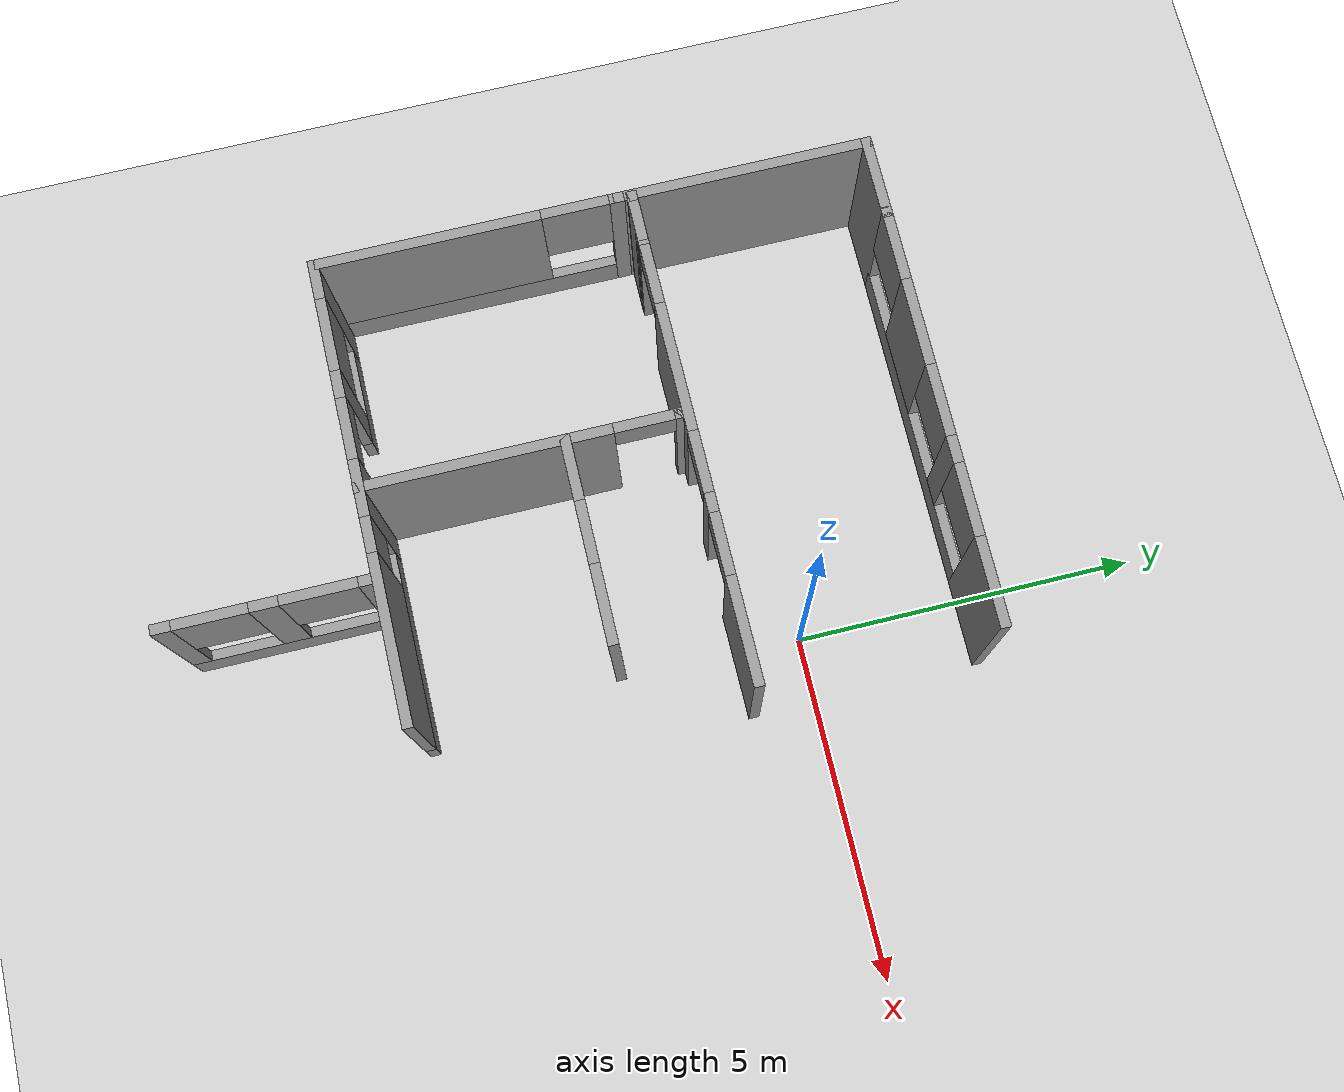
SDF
<sdf version="1.7">
 <world name="default">
  <model name="ground_plane">
   <static>1</static>
   <link name="link">
    <collision name="collision">
     <geometry><plane><normal>0 0 1</normal><size>100 100</size></plane></geometry>
     <surface>
      <contact><collide_bitmask>65535</collide_bitmask></contact>
      <friction><ode><mu>100</mu><mu2>50</mu2></ode></friction>
     </surface>
    </collision>
    <visual name="visual">
     <cast_shadows>0</cast_shadows>
     <geometry><plane><normal>0 0 1</normal><size>100 100</size></plane></geometry>
     <material>
      <script><uri>file://media/materials/scripts/gazebo.material</uri><name>Gazebo/Grey</name></script>
     </material>
    </visual>
   </link>
  </model>
  <model name="Floorplan1">
   <pose>1.2745 -2.98867 0 0 -0 0</pose>
   <link name="Wall_0">
    <collision name="Wall_0_Collision">
     <geometry><box><size>1.25 0.15 2.5</size></box></geometry>
     <pose>0 0 1.25 0 -0 0</pose>
    </collision>
    <visual name="Wall_0_Visual">
     <pose>0 0 1.25 0 -0 0</pose>
     <geometry><box><size>1.25 0.15 2.5</size></box></geometry>
     <material>
      <script><uri>file://media/materials/scripts/gazebo.material</uri><name>Gazebo/Grey</name></script>
      <ambient>1 1 1 1</ambient>
     </material>
     <meta><layer>0</layer></meta>
    </visual>
    <pose>-6.99818 5.45219 0 0 -0 3.14159</pose>
   </link>
   <link name="Wall_1">
    <collision name="Wall_1_Collision">
     <geometry><box><size>3.75 0.15 2.5</size></box></geometry>
     <pose>0 0 1.25 0 -0 0</pose>
    </collision>
    <visual name="Wall_1_Visual">
     <pose>0 0 1.25 0 -0 0</pose>
     <geometry><box><size>3.75 0.15 2.5</size></box></geometry>
     <material>
      <script><uri>file://media/materials/scripts/gazebo.material</uri><name>Gazebo/Grey</name></script>
      <ambient>1 1 1 1</ambient>
     </material>
     <meta><layer>0</layer></meta>
    </visual>
    <pose>-7.54818 3.65219 0 0 -0 -1.5708</pose>
   </link>
   <link name="Wall_10">
    <collision name="Wall_10_Collision">
     <geometry><box><size>0.15 0.15 2.5</size></box></geometry>
     <pose>0 0 1.25 0 -0 0</pose>
    </collision>
    <visual name="Wall_10_Visual">
     <pose>0 0 1.25 0 -0 0</pose>
     <geometry><box><size>0.15 0.15 2.5</size></box></geometry>
     <material>
      <script><uri>file://media/materials/scripts/gazebo.material</uri><name>Gazebo/Grey</name></script>
      <ambient>1 1 1 1</ambient>
     </material>
     <meta><layer>0</layer></meta>
    </visual>
    <pose>-6.44818 5.45219 0 0 -0 0</pose>
   </link>
   <link name="Wall_12">
    <collision name="Wall_12_Collision">
     <geometry><box><size>0.15 0.15 2.5</size></box></geometry>
     <pose>0 0 1.25 0 -0 0</pose>
    </collision>
    <visual name="Wall_12_Visual">
     <pose>0 0 1.25 0 -0 0</pose>
     <geometry><box><size>0.15 0.15 2.5</size></box></geometry>
     <material>
      <script><uri>file://media/materials/scripts/gazebo.material</uri><name>Gazebo/Grey</name></script>
      <ambient>1 1 1 1</ambient>
     </material>
     <meta><layer>0</layer></meta>
    </visual>
    <pose>-7.52398 2.04006 0 0 -0 0</pose>
   </link>
   <link name="Wall_14">
    <collision name="Wall_14_Collision">
     <geometry><box><size>0.15 0.15 2.5</size></box></geometry>
     <pose>0 0 1.25 0 -0 0</pose>
    </collision>
    <visual name="Wall_14_Visual">
     <pose>0 0 1.25 0 -0 0</pose>
     <geometry><box><size>0.15 0.15 2.5</size></box></geometry>
     <material>
      <script><uri>file://media/materials/scripts/gazebo.material</uri><name>Gazebo/Grey</name></script>
      <ambient>1 1 1 1</ambient>
     </material>
     <meta><layer>0</layer></meta>
    </visual>
    <pose>-7.52398 2.04006 0 0 -0 0</pose>
   </link>
   <link name="Wall_16">
    <collision name="Wall_16_Collision">
     <geometry><box><size>0.15 0.15 2.5</size></box></geometry>
     <pose>0 0 1.25 0 -0 0</pose>
    </collision>
    <visual name="Wall_16_Visual">
     <pose>0 0 1.25 0 -0 0</pose>
     <geometry><box><size>0.15 0.15 2.5</size></box></geometry>
     <material>
      <script><uri>file://media/materials/scripts/gazebo.material</uri><name>Gazebo/Grey</name></script>
      <ambient>1 1 1 1</ambient>
     </material>
     <meta><layer>0</layer></meta>
    </visual>
    <pose>-7.52398 2.04006 0 0 -0 0</pose>
   </link>
   <link name="Wall_18">
    <pose>-7.54818 -0.322811 0 0 -0 -1.5708</pose>
    <visual name="Wall_18_Visual_0">
     <pose>-2.14202 0 1.25 0 -0 0</pose>
     <geometry><box><size>0.215958 0.15 2.5</size></box></geometry>
     <material>
      <script><uri>file://media/materials/scripts/gazebo.material</uri><name>Gazebo/Grey</name></script>
      <ambient>1 1 1 1</ambient>
     </material>
     <meta><layer>0</layer></meta>
    </visual>
    <collision name="Wall_18_Collision_0">
     <geometry><box><size>0.215958 0.15 2.5</size></box></geometry>
     <pose>-2.14202 0 1.25 0 -0 0</pose>
    </collision>
    <visual name="Wall_18_Visual_1">
     <pose>0.107979 0 0.25 0 -0 0</pose>
     <geometry><box><size>4.28404 0.15 0.5</size></box></geometry>
     <material>
      <script><uri>file://media/materials/scripts/gazebo.material</uri><name>Gazebo/Grey</name></script>
      <ambient>1 1 1 1</ambient>
     </material>
     <meta><layer>0</layer></meta>
    </visual>
    <collision name="Wall_18_Collision_1">
     <geometry><box><size>4.28404 0.15 0.5</size></box></geometry>
     <pose>0.107979 0 0.25 0 -0 0</pose>
    </collision>
    <visual name="Wall_18_Visual_2">
     <pose>0.597695 0 1.5 0 -0 0</pose>
     <geometry><box><size>3.30461 0.15 2</size></box></geometry>
     <material>
      <script><uri>file://media/materials/scripts/gazebo.material</uri><name>Gazebo/Grey</name></script>
      <ambient>1 1 1 1</ambient>
     </material>
     <meta><layer>0</layer></meta>
    </visual>
    <collision name="Wall_18_Collision_2">
     <geometry><box><size>3.30461 0.15 2</size></box></geometry>
     <pose>0.597695 0 1.5 0 -0 0</pose>
    </collision>
    <visual name="Wall_18_Visual_3">
     <pose>-1.54433 0 1.9 0 -0 0</pose>
     <geometry><box><size>0.979431 0.15 1.2</size></box></geometry>
     <material>
      <script><uri>file://media/materials/scripts/gazebo.material</uri><name>Gazebo/Grey</name></script>
      <ambient>1 1 1 1</ambient>
     </material>
     <meta><layer>0</layer></meta>
    </visual>
    <collision name="Wall_18_Collision_3">
     <geometry><box><size>0.979431 0.15 1.2</size></box></geometry>
     <pose>-1.54433 0 1.9 0 -0 0</pose>
    </collision>
   </link>
   <link name="Wall_19">
    <pose>-4.24818 -2.49781 0 0 -0 0</pose>
    <visual name="Wall_19_Visual_0">
     <pose>-3.08087 0 1.25 0 -0 0</pose>
     <geometry><box><size>0.58825 0.15 2.5</size></box></geometry>
     <material>
      <script><uri>file://media/materials/scripts/gazebo.material</uri><name>Gazebo/Grey</name></script>
      <ambient>1 1 1 1</ambient>
     </material>
     <meta><layer>0</layer></meta>
    </visual>
    <collision name="Wall_19_Collision_0">
     <geometry><box><size>0.58825 0.15 2.5</size></box></geometry>
     <pose>-3.08087 0 1.25 0 -0 0</pose>
    </collision>
    <visual name="Wall_19_Visual_1">
     <pose>0.015384 0 1.25 0 -0 0</pose>
     <geometry><box><size>0.825338 0.15 2.5</size></box></geometry>
     <material>
      <script><uri>file://media/materials/scripts/gazebo.material</uri><name>Gazebo/Grey</name></script>
      <ambient>1 1 1 1</ambient>
     </material>
     <meta><layer>0</layer></meta>
    </visual>
    <collision name="Wall_19_Collision_1">
     <geometry><box><size>0.825338 0.15 2.5</size></box></geometry>
     <pose>0.015384 0 1.25 0 -0 0</pose>
    </collision>
    <visual name="Wall_19_Visual_2">
     <pose>-2.04202 0 0.25 0 -0 0</pose>
     <geometry><box><size>1.48947 0.15 0.5</size></box></geometry>
     <material>
      <script><uri>file://media/materials/scripts/gazebo.material</uri><name>Gazebo/Grey</name></script>
      <ambient>1 1 1 1</ambient>
     </material>
     <meta><layer>0</layer></meta>
    </visual>
    <collision name="Wall_19_Collision_2">
     <geometry><box><size>1.48947 0.15 0.5</size></box></geometry>
     <pose>-2.04202 0 0.25 0 -0 0</pose>
    </collision>
    <visual name="Wall_19_Visual_3">
     <pose>1.90153 0 0.25 0 -0 0</pose>
     <geometry><box><size>2.94695 0.15 0.5</size></box></geometry>
     <material>
      <script><uri>file://media/materials/scripts/gazebo.material</uri><name>Gazebo/Grey</name></script>
      <ambient>1 1 1 1</ambient>
     </material>
     <meta><layer>0</layer></meta>
    </visual>
    <collision name="Wall_19_Collision_3">
     <geometry><box><size>2.94695 0.15 0.5</size></box></geometry>
     <pose>1.90153 0 0.25 0 -0 0</pose>
    </collision>
    <visual name="Wall_19_Visual_4">
     <pose>-1.49997 0 1.5 0 -0 0</pose>
     <geometry><box><size>0.405366 0.15 2</size></box></geometry>
     <material>
      <script><uri>file://media/materials/scripts/gazebo.material</uri><name>Gazebo/Grey</name></script>
      <ambient>1 1 1 1</ambient>
     </material>
     <meta><layer>0</layer></meta>
    </visual>
    <collision name="Wall_19_Collision_4">
     <geometry><box><size>0.405366 0.15 2</size></box></geometry>
     <pose>-1.49997 0 1.5 0 -0 0</pose>
    </collision>
    <visual name="Wall_19_Visual_5">
     <pose>-1.49997 0 1.5 0 -0 0</pose>
     <geometry><box><size>0.405366 0.15 2</size></box></geometry>
     <material>
      <script><uri>file://media/materials/scripts/gazebo.material</uri><name>Gazebo/Grey</name></script>
      <ambient>1 1 1 1</ambient>
     </material>
     <meta><layer>0</layer></meta>
    </visual>
    <collision name="Wall_19_Collision_5">
     <geometry><box><size>0.405366 0.15 2</size></box></geometry>
     <pose>-1.49997 0 1.5 0 -0 0</pose>
    </collision>
    <visual name="Wall_19_Visual_6">
     <pose>2.15948 0 1.5 0 -0 0</pose>
     <geometry><box><size>2.43105 0.15 2</size></box></geometry>
     <material>
      <script><uri>file://media/materials/scripts/gazebo.material</uri><name>Gazebo/Grey</name></script>
      <ambient>1 1 1 1</ambient>
     </material>
     <meta><layer>0</layer></meta>
    </visual>
    <collision name="Wall_19_Collision_6">
     <geometry><box><size>2.43105 0.15 2</size></box></geometry>
     <pose>2.15948 0 1.5 0 -0 0</pose>
    </collision>
    <visual name="Wall_19_Visual_7">
     <pose>-2.2447 0 1.9 0 -0 0</pose>
     <geometry><box><size>1.0841 0.15 1.2</size></box></geometry>
     <material>
      <script><uri>file://media/materials/scripts/gazebo.material</uri><name>Gazebo/Grey</name></script>
      <ambient>1 1 1 1</ambient>
     </material>
     <meta><layer>0</layer></meta>
    </visual>
    <collision name="Wall_19_Collision_7">
     <geometry><box><size>1.0841 0.15 1.2</size></box></geometry>
     <pose>-2.2447 0 1.9 0 -0 0</pose>
    </collision>
    <visual name="Wall_19_Visual_8">
     <pose>0.686003 0 1.9 0 -0 0</pose>
     <geometry><box><size>0.515901 0.15 1.2</size></box></geometry>
     <material>
      <script><uri>file://media/materials/scripts/gazebo.material</uri><name>Gazebo/Grey</name></script>
      <ambient>1 1 1 1</ambient>
     </material>
     <meta><layer>0</layer></meta>
    </visual>
    <collision name="Wall_19_Collision_8">
     <geometry><box><size>0.515901 0.15 1.2</size></box></geometry>
     <pose>0.686003 0 1.9 0 -0 0</pose>
    </collision>
    <visual name="Wall_19_Visual_9">
     <pose>-0.847285 0 2.25 0 -0 0</pose>
     <geometry><box><size>0.9 0.15 0.5</size></box></geometry>
     <material>
      <script><uri>file://media/materials/scripts/gazebo.material</uri><name>Gazebo/Grey</name></script>
      <ambient>1 1 1 1</ambient>
     </material>
     <meta><layer>0</layer></meta>
    </visual>
    <collision name="Wall_19_Collision_9">
     <geometry><box><size>0.9 0.15 0.5</size></box></geometry>
     <pose>-0.847285 0 2.25 0 -0 0</pose>
    </collision>
    <visual name="Wall_19_Visual_10">
     <pose>-0.847285 0 2.25 0 -0 0</pose>
     <geometry><box><size>0.9 0.15 0.5</size></box></geometry>
     <material>
      <script><uri>file://media/materials/scripts/gazebo.material</uri><name>Gazebo/Grey</name></script>
      <ambient>1 1 1 1</ambient>
     </material>
     <meta><layer>0</layer></meta>
    </visual>
    <collision name="Wall_19_Collision_10">
     <geometry><box><size>0.9 0.15 0.5</size></box></geometry>
     <pose>-0.847285 0 2.25 0 -0 0</pose>
    </collision>
   </link>
   <link name="Wall_2">
    <collision name="Wall_2_Collision">
     <geometry><box><size>0.15 0.15 2.5</size></box></geometry>
     <pose>0 0 1.25 0 -0 0</pose>
    </collision>
    <visual name="Wall_2_Visual">
     <pose>0 0 1.25 0 -0 0</pose>
     <geometry><box><size>0.15 0.15 2.5</size></box></geometry>
     <material>
      <script><uri>file://media/materials/scripts/gazebo.material</uri><name>Gazebo/Grey</name></script>
      <ambient>1 1 1 1</ambient>
     </material>
     <meta><layer>0</layer></meta>
    </visual>
    <pose>-7.54818 1.85219 0 0 -0 0</pose>
   </link>
   <link name="Wall_26">
    <pose>-2.81697 0.347251 0 0 -0 3.14159</pose>
    <visual name="Wall_26_Visual_0">
     <pose>-0.92766 0 1.25 0 -0 0</pose>
     <geometry><box><size>1.14468 0.15 2.5</size></box></geometry>
     <material>
      <script><uri>file://media/materials/scripts/gazebo.material</uri><name>Gazebo/Grey</name></script>
      <ambient>1 1 1 1</ambient>
     </material>
     <meta><layer>0</layer></meta>
    </visual>
    <collision name="Wall_26_Collision_0">
     <geometry><box><size>1.14468 0.15 2.5</size></box></geometry>
     <pose>-0.92766 0 1.25 0 -0 0</pose>
    </collision>
    <visual name="Wall_26_Visual_1">
     <pose>1.02234 0 1.25 0 -0 0</pose>
     <geometry><box><size>0.95532 0.15 2.5</size></box></geometry>
     <material>
      <script><uri>file://media/materials/scripts/gazebo.material</uri><name>Gazebo/Grey</name></script>
      <ambient>1 1 1 1</ambient>
     </material>
     <meta><layer>0</layer></meta>
    </visual>
    <collision name="Wall_26_Collision_1">
     <geometry><box><size>0.95532 0.15 2.5</size></box></geometry>
     <pose>1.02234 0 1.25 0 -0 0</pose>
    </collision>
    <visual name="Wall_26_Visual_2">
     <pose>0.09468 0 2.25 0 -0 0</pose>
     <geometry><box><size>0.9 0.15 0.5</size></box></geometry>
     <material>
      <script><uri>file://media/materials/scripts/gazebo.material</uri><name>Gazebo/Grey</name></script>
      <ambient>1 1 1 1</ambient>
     </material>
     <meta><layer>0</layer></meta>
    </visual>
    <collision name="Wall_26_Collision_2">
     <geometry><box><size>0.9 0.15 0.5</size></box></geometry>
     <pose>0.09468 0 2.25 0 -0 0</pose>
    </collision>
   </link>
   <link name="Wall_27">
    <collision name="Wall_27_Collision">
     <geometry><box><size>3 0.15 2.5</size></box></geometry>
     <pose>0 0 1.25 0 -0 0</pose>
    </collision>
    <visual name="Wall_27_Visual">
     <pose>0 0 1.25 0 -0 0</pose>
     <geometry><box><size>3 0.15 2.5</size></box></geometry>
     <material>
      <script><uri>file://media/materials/scripts/gazebo.material</uri><name>Gazebo/Grey</name></script>
      <ambient>1 1 1 1</ambient>
     </material>
     <meta><layer>0</layer></meta>
    </visual>
    <pose>-4.24197 -1.07775 0 0 -0 -1.5708</pose>
   </link>
   <link name="Wall_28">
    <collision name="Wall_28_Collision">
     <geometry><box><size>0.15 0.15 2.5</size></box></geometry>
     <pose>0 0 1.25 0 -0 0</pose>
    </collision>
    <visual name="Wall_28_Visual">
     <pose>0 0 1.25 0 -0 0</pose>
     <geometry><box><size>0.15 0.15 2.5</size></box></geometry>
     <material>
      <script><uri>file://media/materials/scripts/gazebo.material</uri><name>Gazebo/Grey</name></script>
      <ambient>1 1 1 1</ambient>
     </material>
     <meta><layer>0</layer></meta>
    </visual>
    <pose>-4.24197 -2.50275 0 0 -0 0</pose>
   </link>
   <link name="Wall_3">
    <collision name="Wall_3_Collision">
     <geometry><box><size>0.15 0.15 2.5</size></box></geometry>
     <pose>0 0 1.25 0 -0 0</pose>
    </collision>
    <visual name="Wall_3_Visual">
     <pose>0 0 1.25 0 -0 0</pose>
     <geometry><box><size>0.15 0.15 2.5</size></box></geometry>
     <material>
      <script><uri>file://media/materials/scripts/gazebo.material</uri><name>Gazebo/Grey</name></script>
      <ambient>1 1 1 1</ambient>
     </material>
     <meta><layer>0</layer></meta>
    </visual>
    <pose>-7.54818 1.85219 0 0 -0 0</pose>
   </link>
   <link name="Wall_30">
    <pose>-4.24197 1.14725 0 0 -0 1.5708</pose>
    <visual name="Wall_30_Visual_0">
     <pose>-0.503537 0 1.25 0 -0 0</pose>
     <geometry><box><size>0.742926 0.15 2.5</size></box></geometry>
     <material>
      <script><uri>file://media/materials/scripts/gazebo.material</uri><name>Gazebo/Grey</name></script>
      <ambient>1 1 1 1</ambient>
     </material>
     <meta><layer>0</layer></meta>
    </visual>
    <collision name="Wall_30_Collision_0">
     <geometry><box><size>0.742926 0.15 2.5</size></box></geometry>
     <pose>-0.503537 0 1.25 0 -0 0</pose>
    </collision>
    <visual name="Wall_30_Visual_1">
     <pose>0.821463 0 1.25 0 -0 0</pose>
     <geometry><box><size>0.107074 0.15 2.5</size></box></geometry>
     <material>
      <script><uri>file://media/materials/scripts/gazebo.material</uri><name>Gazebo/Grey</name></script>
      <ambient>1 1 1 1</ambient>
     </material>
     <meta><layer>0</layer></meta>
    </visual>
    <collision name="Wall_30_Collision_1">
     <geometry><box><size>0.107074 0.15 2.5</size></box></geometry>
     <pose>0.821463 0 1.25 0 -0 0</pose>
    </collision>
    <visual name="Wall_30_Visual_2">
     <pose>0.317926 0 2.25 0 -0 0</pose>
     <geometry><box><size>0.9 0.15 0.5</size></box></geometry>
     <material>
      <script><uri>file://media/materials/scripts/gazebo.material</uri><name>Gazebo/Grey</name></script>
      <ambient>1 1 1 1</ambient>
     </material>
     <meta><layer>0</layer></meta>
    </visual>
    <collision name="Wall_30_Collision_2">
     <geometry><box><size>0.9 0.15 0.5</size></box></geometry>
     <pose>0.317926 0 2.25 0 -0 0</pose>
    </collision>
   </link>
   <link name="Wall_31">
    <collision name="Wall_31_Collision">
     <geometry><box><size>0.15 0.15 2.5</size></box></geometry>
     <pose>0 0 1.25 0 -0 0</pose>
    </collision>
    <visual name="Wall_31_Visual">
     <pose>0 0 1.25 0 -0 0</pose>
     <geometry><box><size>0.15 0.15 2.5</size></box></geometry>
     <material>
      <script><uri>file://media/materials/scripts/gazebo.material</uri><name>Gazebo/Grey</name></script>
      <ambient>1 1 1 1</ambient>
     </material>
     <meta><layer>0</layer></meta>
    </visual>
    <pose>-4.24197 1.94725 0 0 -0 0</pose>
   </link>
   <link name="Wall_33">
    <pose>-2.95182 -4.05 0 0 -0 -1.5708</pose>
    <visual name="Wall_33_Visual_0">
     <pose>-1.39729 0 1.25 0 -0 0</pose>
     <geometry><box><size>0.205423 0.15 2.5</size></box></geometry>
     <material>
      <script><uri>file://media/materials/scripts/gazebo.material</uri><name>Gazebo/Grey</name></script>
      <ambient>1 1 1 1</ambient>
     </material>
     <meta><layer>0</layer></meta>
    </visual>
    <collision name="Wall_33_Collision_0">
     <geometry><box><size>0.205423 0.15 2.5</size></box></geometry>
     <pose>-1.39729 0 1.25 0 -0 0</pose>
    </collision>
    <visual name="Wall_33_Visual_1">
     <pose>0.102712 0 0.25 0 -0 0</pose>
     <geometry><box><size>2.79458 0.15 0.5</size></box></geometry>
     <material>
      <script><uri>file://media/materials/scripts/gazebo.material</uri><name>Gazebo/Grey</name></script>
      <ambient>1 1 1 1</ambient>
     </material>
     <meta><layer>0</layer></meta>
    </visual>
    <collision name="Wall_33_Collision_1">
     <geometry><box><size>2.79458 0.15 0.5</size></box></geometry>
     <pose>0.102712 0 0.25 0 -0 0</pose>
    </collision>
    <visual name="Wall_33_Visual_2">
     <pose>-0.017608 0 1.5 0 -0 0</pose>
     <geometry><box><size>0.403682 0.15 2</size></box></geometry>
     <material>
      <script><uri>file://media/materials/scripts/gazebo.material</uri><name>Gazebo/Grey</name></script>
      <ambient>1 1 1 1</ambient>
     </material>
     <meta><layer>0</layer></meta>
    </visual>
    <collision name="Wall_33_Collision_2">
     <geometry><box><size>0.403682 0.15 2</size></box></geometry>
     <pose>-0.017608 0 1.5 0 -0 0</pose>
    </collision>
    <visual name="Wall_33_Visual_3">
     <pose>1.36248 0 1.5 0 -0 0</pose>
     <geometry><box><size>0.275031 0.15 2</size></box></geometry>
     <material>
      <script><uri>file://media/materials/scripts/gazebo.material</uri><name>Gazebo/Grey</name></script>
      <ambient>1 1 1 1</ambient>
     </material>
     <meta><layer>0</layer></meta>
    </visual>
    <collision name="Wall_33_Collision_3">
     <geometry><box><size>0.275031 0.15 2</size></box></geometry>
     <pose>1.36248 0 1.5 0 -0 0</pose>
    </collision>
    <visual name="Wall_33_Visual_4">
     <pose>-0.757013 0 1.9 0 -0 0</pose>
     <geometry><box><size>1.07513 0.15 1.2</size></box></geometry>
     <material>
      <script><uri>file://media/materials/scripts/gazebo.material</uri><name>Gazebo/Grey</name></script>
      <ambient>1 1 1 1</ambient>
     </material>
     <meta><layer>0</layer></meta>
    </visual>
    <collision name="Wall_33_Collision_4">
     <geometry><box><size>1.07513 0.15 1.2</size></box></geometry>
     <pose>-0.757013 0 1.9 0 -0 0</pose>
    </collision>
    <visual name="Wall_33_Visual_5">
     <pose>0.704601 0 1.9 0 -0 0</pose>
     <geometry><box><size>1.04074 0.15 1.2</size></box></geometry>
     <material>
      <script><uri>file://media/materials/scripts/gazebo.material</uri><name>Gazebo/Grey</name></script>
      <ambient>1 1 1 1</ambient>
     </material>
     <meta><layer>0</layer></meta>
    </visual>
    <collision name="Wall_33_Collision_5">
     <geometry><box><size>1.04074 0.15 1.2</size></box></geometry>
     <pose>0.704601 0 1.9 0 -0 0</pose>
    </collision>
   </link>
   <link name="Wall_5">
    <collision name="Wall_5_Collision">
     <geometry><box><size>0.75 0.15 2.5</size></box></geometry>
     <pose>0 0 1.25 0 -0 0</pose>
    </collision>
    <visual name="Wall_5_Visual">
     <pose>0 0 1.25 0 -0 0</pose>
     <geometry><box><size>0.75 0.15 2.5</size></box></geometry>
     <material>
      <script><uri>file://media/materials/scripts/gazebo.material</uri><name>Gazebo/Grey</name></script>
      <ambient>1 1 1 1</ambient>
     </material>
     <meta><layer>0</layer></meta>
    </visual>
    <pose>-7.21105 2.04006 0 0 -0 0</pose>
   </link>
   <link name="Wall_6">
    <pose>-3.66277 2.05945 0 0 -0 0.005947</pose>
    <visual name="Wall_6_Visual_0">
     <pose>-3.22077 0 1.25 0 -0 0</pose>
     <geometry><box><size>0.230997 0.15 2.5</size></box></geometry>
     <material>
      <script><uri>file://media/materials/scripts/gazebo.material</uri><name>Gazebo/Grey</name></script>
      <ambient>1 1 1 1</ambient>
     </material>
     <meta><layer>0</layer></meta>
    </visual>
    <collision name="Wall_6_Collision_0">
     <geometry><box><size>0.230997 0.15 2.5</size></box></geometry>
     <pose>-3.22077 0 1.25 0 -0 0</pose>
    </collision>
    <visual name="Wall_6_Visual_1">
     <pose>-1.25109 0 1.25 0 -0 0</pose>
     <geometry><box><size>1.90837 0.15 2.5</size></box></geometry>
     <material>
      <script><uri>file://media/materials/scripts/gazebo.material</uri><name>Gazebo/Grey</name></script>
      <ambient>1 1 1 1</ambient>
     </material>
     <meta><layer>0</layer></meta>
    </visual>
    <collision name="Wall_6_Collision_1">
     <geometry><box><size>1.90837 0.15 2.5</size></box></geometry>
     <pose>-1.25109 0 1.25 0 -0 0</pose>
    </collision>
    <visual name="Wall_6_Visual_2">
     <pose>0.744794 0 1.25 0 -0 0</pose>
     <geometry><box><size>0.2834 0.15 2.5</size></box></geometry>
     <material>
      <script><uri>file://media/materials/scripts/gazebo.material</uri><name>Gazebo/Grey</name></script>
      <ambient>1 1 1 1</ambient>
     </material>
     <meta><layer>0</layer></meta>
    </visual>
    <collision name="Wall_6_Collision_2">
     <geometry><box><size>0.2834 0.15 2.5</size></box></geometry>
     <pose>0.744794 0 1.25 0 -0 0</pose>
    </collision>
    <visual name="Wall_6_Visual_3">
     <pose>2.56138 0 1.25 0 -0 0</pose>
     <geometry><box><size>1.54978 0.15 2.5</size></box></geometry>
     <material>
      <script><uri>file://media/materials/scripts/gazebo.material</uri><name>Gazebo/Grey</name></script>
      <ambient>1 1 1 1</ambient>
     </material>
     <meta><layer>0</layer></meta>
    </visual>
    <collision name="Wall_6_Collision_3">
     <geometry><box><size>1.54978 0.15 2.5</size></box></geometry>
     <pose>2.56138 0 1.25 0 -0 0</pose>
    </collision>
    <visual name="Wall_6_Visual_4">
     <pose>-2.65527 0 2.25 0 -0 0</pose>
     <geometry><box><size>0.9 0.15 0.5</size></box></geometry>
     <material>
      <script><uri>file://media/materials/scripts/gazebo.material</uri><name>Gazebo/Grey</name></script>
      <ambient>1 1 1 1</ambient>
     </material>
     <meta><layer>0</layer></meta>
    </visual>
    <collision name="Wall_6_Collision_4">
     <geometry><box><size>0.9 0.15 0.5</size></box></geometry>
     <pose>-2.65527 0 2.25 0 -0 0</pose>
    </collision>
    <visual name="Wall_6_Visual_5">
     <pose>0.153094 0 2.25 0 -0 0</pose>
     <geometry><box><size>0.9 0.15 0.5</size></box></geometry>
     <material>
      <script><uri>file://media/materials/scripts/gazebo.material</uri><name>Gazebo/Grey</name></script>
      <ambient>1 1 1 1</ambient>
     </material>
     <meta><layer>0</layer></meta>
    </visual>
    <collision name="Wall_6_Collision_5">
     <geometry><box><size>0.9 0.15 0.5</size></box></geometry>
     <pose>0.153094 0 2.25 0 -0 0</pose>
    </collision>
    <visual name="Wall_6_Visual_6">
     <pose>1.33649 0 2.25 0 -0 0</pose>
     <geometry><box><size>0.9 0.15 0.5</size></box></geometry>
     <material>
      <script><uri>file://media/materials/scripts/gazebo.material</uri><name>Gazebo/Grey</name></script>
      <ambient>1 1 1 1</ambient>
     </material>
     <meta><layer>0</layer></meta>
    </visual>
    <collision name="Wall_6_Collision_6">
     <geometry><box><size>0.9 0.15 0.5</size></box></geometry>
     <pose>1.33649 0 2.25 0 -0 0</pose>
    </collision>
   </link>
   <link name="Wall_9">
    <pose>-3.42487 5.44052 0 0 -0 3.13773</pose>
    <visual name="Wall_9_Visual_0">
     <pose>-2.45375 0 1.25 0 -0 0</pose>
     <geometry><box><size>1.28918 0.15 2.5</size></box></geometry>
     <material>
      <script><uri>file://media/materials/scripts/gazebo.material</uri><name>Gazebo/Grey</name></script>
      <ambient>1 1 1 1</ambient>
     </material>
     <meta><layer>0</layer></meta>
    </visual>
    <collision name="Wall_9_Collision_0">
     <geometry><box><size>1.28918 0.15 2.5</size></box></geometry>
     <pose>-2.45375 0 1.25 0 -0 0</pose>
    </collision>
    <visual name="Wall_9_Visual_1">
     <pose>0.64459 0 0.25 0 -0 0</pose>
     <geometry><box><size>4.90749 0.15 0.5</size></box></geometry>
     <material>
      <script><uri>file://media/materials/scripts/gazebo.material</uri><name>Gazebo/Grey</name></script>
      <ambient>1 1 1 1</ambient>
     </material>
     <meta><layer>0</layer></meta>
    </visual>
    <collision name="Wall_9_Collision_1">
     <geometry><box><size>4.90749 0.15 0.5</size></box></geometry>
     <pose>0.64459 0 0.25 0 -0 0</pose>
    </collision>
    <visual name="Wall_9_Visual_2">
     <pose>-0.557113 0 1.5 0 -0 0</pose>
     <geometry><box><size>0.396284 0.15 2</size></box></geometry>
     <material>
      <script><uri>file://media/materials/scripts/gazebo.material</uri><name>Gazebo/Grey</name></script>
      <ambient>1 1 1 1</ambient>
     </material>
     <meta><layer>0</layer></meta>
    </visual>
    <collision name="Wall_9_Collision_2">
     <geometry><box><size>0.396284 0.15 2</size></box></geometry>
     <pose>-0.557113 0 1.5 0 -0 0</pose>
    </collision>
    <visual name="Wall_9_Visual_3">
     <pose>1.34185 0 1.5 0 -0 0</pose>
     <geometry><box><size>1.29303 0.15 2</size></box></geometry>
     <material>
      <script><uri>file://media/materials/scripts/gazebo.material</uri><name>Gazebo/Grey</name></script>
      <ambient>1 1 1 1</ambient>
     </material>
     <meta><layer>0</layer></meta>
    </visual>
    <collision name="Wall_9_Collision_3">
     <geometry><box><size>1.29303 0.15 2</size></box></geometry>
     <pose>1.34185 0 1.5 0 -0 0</pose>
    </collision>
    <visual name="Wall_9_Visual_4">
     <pose>3.08537 0 1.5 0 -0 0</pose>
     <geometry><box><size>0.025935 0.15 2</size></box></geometry>
     <material>
      <script><uri>file://media/materials/scripts/gazebo.material</uri><name>Gazebo/Grey</name></script>
      <ambient>1 1 1 1</ambient>
     </material>
     <meta><layer>0</layer></meta>
    </visual>
    <collision name="Wall_9_Collision_4">
     <geometry><box><size>0.025935 0.15 2</size></box></geometry>
     <pose>3.08537 0 1.5 0 -0 0</pose>
    </collision>
    <visual name="Wall_9_Visual_5">
     <pose>-1.28221 0 1.9 0 -0 0</pose>
     <geometry><box><size>1.0539 0.15 1.2</size></box></geometry>
     <material>
      <script><uri>file://media/materials/scripts/gazebo.material</uri><name>Gazebo/Grey</name></script>
      <ambient>1 1 1 1</ambient>
     </material>
     <meta><layer>0</layer></meta>
    </visual>
    <collision name="Wall_9_Collision_5">
     <geometry><box><size>1.0539 0.15 1.2</size></box></geometry>
     <pose>-1.28221 0 1.9 0 -0 0</pose>
    </collision>
    <visual name="Wall_9_Visual_6">
     <pose>0.168182 0 1.9 0 -0 0</pose>
     <geometry><box><size>1.05431 0.15 1.2</size></box></geometry>
     <material>
      <script><uri>file://media/materials/scripts/gazebo.material</uri><name>Gazebo/Grey</name></script>
      <ambient>1 1 1 1</ambient>
     </material>
     <meta><layer>0</layer></meta>
    </visual>
    <collision name="Wall_9_Collision_6">
     <geometry><box><size>1.05431 0.15 1.2</size></box></geometry>
     <pose>0.168182 0 1.9 0 -0 0</pose>
    </collision>
    <visual name="Wall_9_Visual_7">
     <pose>2.53038 0 1.9 0 -0 0</pose>
     <geometry><box><size>1.08404 0.15 1.2</size></box></geometry>
     <material>
      <script><uri>file://media/materials/scripts/gazebo.material</uri><name>Gazebo/Grey</name></script>
      <ambient>1 1 1 1</ambient>
     </material>
     <meta><layer>0</layer></meta>
    </visual>
    <collision name="Wall_9_Collision_7">
     <geometry><box><size>1.08404 0.15 1.2</size></box></geometry>
     <pose>2.53038 0 1.9 0 -0 0</pose>
    </collision>
   </link>
   <static>1</static>
  </model>
 </world>
</sdf>
